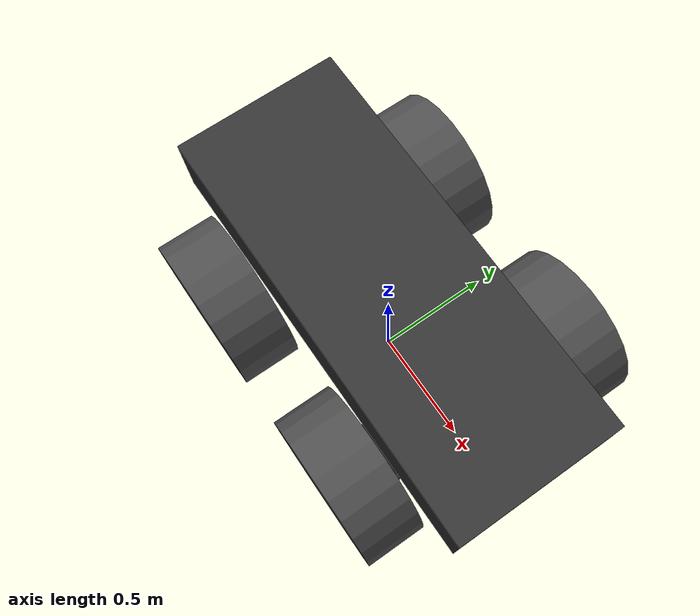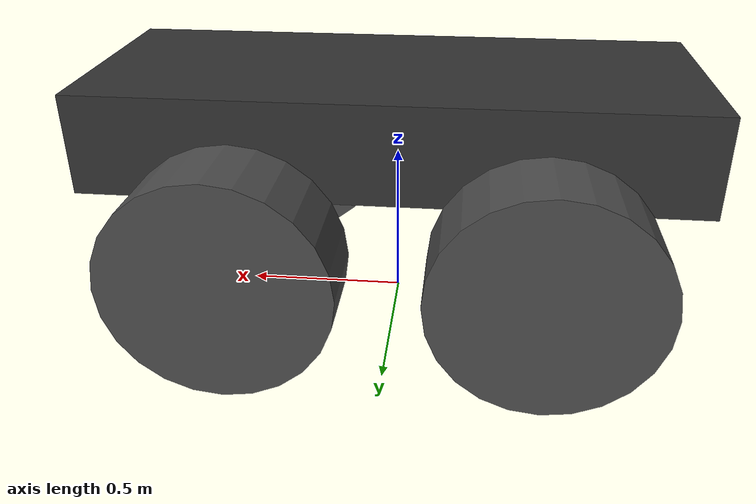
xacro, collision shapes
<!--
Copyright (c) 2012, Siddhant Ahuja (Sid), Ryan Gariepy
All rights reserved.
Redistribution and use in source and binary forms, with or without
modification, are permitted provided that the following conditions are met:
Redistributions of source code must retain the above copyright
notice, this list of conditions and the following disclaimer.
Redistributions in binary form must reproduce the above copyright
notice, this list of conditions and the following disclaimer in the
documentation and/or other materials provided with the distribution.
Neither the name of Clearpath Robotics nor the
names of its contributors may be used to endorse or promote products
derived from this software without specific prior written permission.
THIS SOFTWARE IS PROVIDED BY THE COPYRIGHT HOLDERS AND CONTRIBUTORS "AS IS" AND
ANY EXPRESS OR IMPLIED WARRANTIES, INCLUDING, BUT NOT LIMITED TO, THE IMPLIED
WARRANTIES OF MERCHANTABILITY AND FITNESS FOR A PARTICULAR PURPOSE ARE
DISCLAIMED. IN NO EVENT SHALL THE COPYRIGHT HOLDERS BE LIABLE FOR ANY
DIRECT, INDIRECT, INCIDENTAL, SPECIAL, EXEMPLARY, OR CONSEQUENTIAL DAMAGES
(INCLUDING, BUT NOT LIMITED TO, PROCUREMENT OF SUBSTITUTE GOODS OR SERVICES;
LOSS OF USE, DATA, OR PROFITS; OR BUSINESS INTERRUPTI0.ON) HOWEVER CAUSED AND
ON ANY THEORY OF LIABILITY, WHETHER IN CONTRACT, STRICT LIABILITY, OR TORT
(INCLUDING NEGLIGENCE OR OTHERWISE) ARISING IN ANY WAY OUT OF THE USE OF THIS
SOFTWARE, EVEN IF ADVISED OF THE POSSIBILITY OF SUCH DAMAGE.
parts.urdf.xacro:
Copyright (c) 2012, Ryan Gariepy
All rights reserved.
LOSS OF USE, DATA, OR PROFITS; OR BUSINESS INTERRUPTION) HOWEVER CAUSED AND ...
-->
<?xml version="1.0"?>

<robot xmlns:xacro="http://ros.org/wiki/xacro" name="utias_grizzly_description">
  <xacro:include filename="$(find grizzly_description)/urdf/base.urdf.xacro" />
  <xacro:include filename="$(find utias_grizzly_description)/urdf/accessories/right_lidar.urdf.xacro" />
  <xacro:include filename="$(find utias_grizzly_description)/urdf/accessories/left_lidar.urdf.xacro" />
  <xacro:include filename="$(find utias_grizzly_description)/urdf/accessories/front_xb3.urdf.xacro" />
  <xacro:include filename="$(find utias_grizzly_description)/urdf/accessories/gimbal_base.urdf.xacro" />
  <xacro:include filename="$(find utias_grizzly_description)/urdf/accessories/rear_xb3.urdf.xacro" />
  <xacro:include filename="$(find utias_grizzly_description)/urdf/accessories/front_bumblebee.urdf.xacro" />
  <xacro:include filename="$(find utias_grizzly_description)/urdf/accessories/rear_bumblebee.urdf.xacro" />
  <!-- gps has been renamed to navsat_link, and is defined in the Clearpath Grizzly package -->
  <xacro:include filename="$(find utias_grizzly_description)/urdf/accessories/microstrain.urdf.xacro" />
  <!-- xacro:include filename="$(find utias_grizzly_description)/urdf/accessories/sensor_mast.urdf.xacro" / -->
  <xacro:include filename="$(find utias_grizzly_description)/urdf/accessories/velodyne.urdf.xacro" />
  <xacro:include filename="$(find utias_grizzly_description)/urdf/accessories/honeycomb.urdf.xacro" />
</robot>

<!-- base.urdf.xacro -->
<robot xmlns:xi="http://www.w3.org/2001/XInclude"
       xmlns:gazebo="http://playerstage.sourceforge.net/gazebo/xmlschema/#gz"
       xmlns:model="http://playerstage.sourceforge.net/gazebo/xmlschema/#model"
       xmlns:sensor="http://playerstage.sourceforge.net/gazebo/xmlschema/#sensor"
       xmlns:body="http://playerstage.sourceforge.net/gazebo/xmlschema/#body"
       xmlns:geom="http://playerstage.sourceforge.net/gazebo/xmlschema/#geom"
       xmlns:joint="http://playerstage.sourceforge.net/gazebo/xmlschema/#joint"
       xmlns:controller="http://playerstage.sourceforge.net/gazebo/xmlschema/#controller"
       xmlns:interface="http://playerstage.sourceforge.net/gazebo/xmlschema/#interface"
       xmlns:rendering="http://playerstage.sourceforge.net/gazebo/xmlschema/#rendering"
       xmlns:renderable="http://playerstage.sourceforge.net/gazebo/xmlschema/#renderable"
       xmlns:physics="http://playerstage.sourceforge.net/gazebo/xmlschema/#physics"
       xmlns:xacro="http://ros.org/wiki/xacro"
       name="grizzly">

  <!-- Included URDF/XACRO Files -->
  <xacro:include filename="$(find grizzly_description)/urdf/materials.urdf.xacro" />
  <xacro:include filename="$(find grizzly_description)/urdf/wheel.urdf.xacro" />
  <xacro:include filename="$(find grizzly_description)/urdf/parts.urdf.xacro" />
  <xacro:include filename="$(find grizzly_description)/urdf/add_frame.urdf.xacro" />

  <!-- PROPERTY LIST -->
  <!--All units in m-kg-s-radians unit system -->
  <xacro:property name="M_PI"
            value="3.1415926535897931" />
  <!-- Main Body-base-->
  <!-- Location of com : center of mass -->
  <xacro:property name="base_x_com"
            value="-0.08748000" />
  <xacro:property name="base_y_com"
            value="-0.00085000" />
  <xacro:property name="base_z_com"
            value="0.09947000" />
  <!-- Size of the base-->
  <xacro:property name="base_x_size"
            value="0.708" />
  <xacro:property name="base_y_size"
            value="0.3" />
  <xacro:property name="base_z_size"
            value="1.826" />

  <!-- Mass of the base-->
  <xacro:property name="base_mass" value="487" />

  <!-- Mass of the front axle-->
  <xacro:property name="front_axle_mass" value="113" />

  <!--Inertial values for the front_axle at center of mass, aligned with coordinate system. Units are kg*m^2-->
  <xacro:property name="front_axle_ixx_com_cs"
            value="0.60216370" />
  <xacro:property name="front_axle_ixy_com_cs"
            value="-0.02364198" />
  <xacro:property name="front_axle_ixz_com_cs"
            value="-0.11972132" />
  <xacro:property name="front_axle_iyy_com_cs"
            value="1.73859574" />
  <xacro:property name="front_axle_iyz_com_cs"
            value="-0.00154437" />
  <xacro:property name="front_axle_izz_com_cs"
            value="2.02955229" />
  <!--Inertial values for the base at center of mass, aligned with coordinate system. Units are kg*m^2-->
  <xacro:property name="base_ixx_com_cs"
            value="0.60216370" />
  <xacro:property name="base_ixy_com_cs"
            value="-0.02364198" />
  <xacro:property name="base_ixz_com_cs"
            value="-0.11972132" />
  <xacro:property name="base_iyy_com_cs"
            value="1.73859574" />
  <xacro:property name="base_iyz_com_cs"
            value="-0.00154437" />
  <xacro:property name="base_izz_com_cs"
            value="2.02955229" />

  <!-- BASE-FOOTPRINT -->
  <!-- base_footprint is a fictitious link(frame) that is on the ground right below base_link origin, navigation stack depends on this frame -->
  <link name="base_footprint" />
  <gazebo reference="base_footprint">
    <turnGravityOff>false</turnGravityOff>
  </gazebo>
  <joint name="base_footprint_joint"
         type="fixed">
    <origin xyz="0 0 ${wheel_x_size/2}"
            rpy="0 0 0" />
    <parent link="base_footprint" />
    <child link="base_link" />
  </joint>

  <!-- BASE-LINK -->
  <!--Actual body/chassis of the robot-->
  <link name="base_link">
    <inertial>
      <mass value="${base_mass}" />
      <origin xyz="${base_x_com} ${base_y_com} ${base_z_com}" />
      <inertia ixx="${base_ixx_com_cs}"
               ixy="${base_ixy_com_cs}"
               ixz="${base_ixz_com_cs}"
               iyy="${base_iyy_com_cs}"
               iyz="${base_iyz_com_cs}"
               izz="${base_izz_com_cs}" />
    </inertial>
    <visual>
      <origin xyz="0 0 ${base_z_origin_offset}"
              rpy="${M_PI/2} 0 ${M_PI/2}" />
      <geometry>
        <mesh filename="package://grizzly_description/meshes/base_link.stl" />
      </geometry>
      <material name="DarkGrey" />
    </visual>
    <collision>
      <origin xyz="0 0 0.3"
              rpy="${M_PI/2} 0 ${M_PI/2}" />
      <geometry>
        <box size="${base_x_size} ${base_y_size} ${base_z_size}" />
        <!--making it slightly bigger in x and z direction-->
      </geometry>
    </collision>
  </link>
  <gazebo reference="base_link">
    <material>Gazebo/DarkGrey</material>
    <turnGravityOff>false</turnGravityOff>
    <selfCollide>false</selfCollide>
  </gazebo>

  <!-- Add a sensor anchor link that points to the center of the robot top plate -->
  <xacro:grizzly_tf parent="base_link" name="sensor_anchor_link"
    translateX="0" translateY="0" translateZ="0.45"
    rotateX="0.0" rotateY="0.0" rotateZ="0.0"/>

  <!-- Add a sensor anchor link for the imu -->
  <xacro:grizzly_tf parent="sensor_anchor_link" name="imu_link"
    translateX="-0.788" translateY="0" translateZ="-0.118"
    rotateX="3.1415" rotateY="1.5701" rotateZ="0" />

  <!-- DECORATIONS -->
  <!-- Bumpers -->
  <xacro:grizzly_part parent="base_footprint"
                name="bumper"
                mesh="bumper"
                colour="Yellow"
                translateX="0.0"
                translateY="0.0"
                translateZ="0.5"
                rotateX="${M_PI/2}"
                rotateY="0.0"
                rotateZ="${M_PI/2}" />
  <gazebo reference="base_footprint_bumper_part">
    <material>Gazebo/Yellow</material>
  </gazebo>

  <!-- Back wheels -->
  <xacro:grizzly_wheel fb="back"
                 lr="left"
                 parent="base_link"
                 translateX="-1.75"
                 translateY="1.75"
                 translateZ="0"
                 flipY="0" />
  <xacro:grizzly_wheel fb="back"
                 lr="right"
                 parent="base_link"
                 translateX="-1.75"
                 translateY="-1.75"
                 translateZ="0"
                 flipY="1" />

  <!-- Front axle link -->
  <joint name="front_axle_joint"
         type="revolute">
    <origin xyz="0.4375 0 0"
            rpy="0 0 0" />
    <parent link="base_link" />
    <child link="front_axle_link" />
    <axis xyz="1 0 0"
          rpy="0 0 0" />
    <limit effort="10"
           lower="-0.2"
           upper="0.2"
           velocity="0.5" />
  </joint>

  <link name="front_axle_link">
    <inertial>
      <mass value="${front_axle_mass}" />
      <origin xyz="0 0 0" />
      <inertia ixx="${front_axle_ixx_com_cs}"
               ixy="${front_axle_ixy_com_cs}"
               ixz="${front_axle_ixz_com_cs}"
               iyy="${front_axle_iyy_com_cs}"
               iyz="${front_axle_iyz_com_cs}"
               izz="${front_axle_izz_com_cs}" />
    </inertial>
    <visual>
      <origin xyz="-0.2 0 0.45"
              rpy="0 ${M_PI} ${M_PI/2}" />
      <geometry>
        <mesh filename="package://grizzly_description/meshes/front_axle.stl" />
      </geometry>
      <material name="DarkGrey" />
    </visual>
    <collision>
      <origin xyz="0 0 0"
              rpy="${M_PI/2} 0 0" />
      <geometry>
        <cylinder length="1.0"
                  radius="0.13" />
      </geometry>
    </collision>
  </link>

  <gazebo reference="front_axle_link">
    <material>Gazebo/DarkGrey</material>
    <turnGravityOff>false</turnGravityOff>
  </gazebo>

  <!-- Front wheels -->
  <xacro:grizzly_wheel fb="front"
                 lr="left"
                 parent="front_axle_link"
                 translateX="0"
                 translateY="1.75"
                 translateZ="0"
                 flipY="0" />
  <xacro:grizzly_wheel fb="front"
                 lr="right"
                 parent="front_axle_link"
                 translateX="0"
                 translateY="-1.75"
                 translateZ="0"
                 flipY="1" />

  <!-- Grizzly Plugin -->
  <gazebo>
    <plugin name="grizzly_diff_controller"
            filename="libgrizzly_gazebo_plugins.so">
      <alwaysOn>true</alwaysOn>
      <updateRate>100.0</updateRate>
      <backLeftJoint>joint_back_left_wheel</backLeftJoint>
      <backRightJoint>joint_back_right_wheel</backRightJoint>
      <frontLeftJoint>joint_front_left_wheel</frontLeftJoint>
      <frontRightJoint>joint_front_right_wheel</frontRightJoint>
      <frontAxleJoint>front_axle_joint</frontAxleJoint>
      <wheelSeparation>${base_y_size}</wheelSeparation>
      <wheelDiameter>${wheel_x_size}</wheelDiameter>
      <torque>35</torque>
    </plugin>
  </gazebo>
</robot>

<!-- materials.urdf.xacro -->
<robot>
  <material name="Black">
    <color rgba="0.0 0.0 0.0 1.0" />
  </material>
  <material name="Blue">
    <color rgba="0.0 0.0 0.8 1.0" />
  </material>
  <material name="Green">
    <color rgba="0.0 0.8 0.0 1.0" />
  </material>
  <material name="Grey">
    <color rgba="0.3 0.3 0.3 1.0" />
  </material>
  <material name="DarkGrey">
    <color rgba="0.2 0.2 0.2 1.0" />
  </material>
  <material name="Red">
    <color rgba="0.8 0.0 0.0 1.0" />
  </material>
  <material name="White">
    <color rgba="1.0 1.0 1.0 1.0" />
  </material>
  <material name="Yellow">
    <color rgba="0.8 0.8 0.0 1.0" />
  </material>
</robot>

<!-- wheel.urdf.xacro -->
<robot xmlns:sensor="http://playerstage.sourceforge.net/gazebo/xmlschema/#sensor"
       xmlns:controller="http://playerstage.sourceforge.net/gazebo/xmlschema/#controller"
       xmlns:interface="http://playerstage.sourceforge.net/gazebo/xmlschema/#interface"
       xmlns:xacro="http://ros.org/wiki/xacro"
       name="grizzly_wheel">
  <xacro:property name="M_PI"
            value="3.14159" />
  <!-- Wheel -->
  <xacro:property name="wheel_x_com"
            value="0.00000000" />
  <!-- com : center of mass -->
  <xacro:property name="wheel_y_com"
            value="0.00000000" />
  <!-- com : center of mass -->
  <xacro:property name="wheel_z_com"
            value="0.00019000" />
  <!-- com : center of mass -->
  <xacro:property name="wheel_x_size"
            value="0.66" />
  <xacro:property name="wheel_y_size"
            value="0.66" />
  <xacro:property name="wheel_z_size"
            value="0.252" />

  <xacro:property name="wheel_mass" value="15" />

  <xacro:property name="wheel_ixx_com_cs"
            value="0.02466885" />
  <!-- at center of mass aligned with coordinate system, kg*m^2-->
  <xacro:property name="wheel_ixy_com_cs"
            value="0.00000000" />
  <!-- at center of mass aligned with coordinate system, kg*m^2-->
  <xacro:property name="wheel_ixz_com_cs"
            value="0.00000000" />
  <!-- at center of mass aligned with coordinate system, kg*m^2-->
  <xacro:property name="wheel_iyy_com_cs"
            value="0.02466885" />
  <!-- at center of mass aligned with coordinate system, kg*m^2-->
  <xacro:property name="wheel_iyz_com_cs"
            value="0.00000000" />
  <!-- at center of mass aligned with coordinate system, kg*m^2-->
  <xacro:property name="wheel_izz_com_cs"
            value="0.04410576" />
  <!-- at center of mass aligned with coordinate system, kg*m^2-->
  <xacro:property name="base_x_origin_to_wheel_origin"
            value="0.25600006" />
  <xacro:property name="base_y_origin_to_wheel_origin"
            value="0.285475" />
  <xacro:property name="base_z_origin_to_wheel_origin"
            value="0.0" />
  <xacro:property name="base_z_origin_offset"
            value="0.2" />
  <!-- origin is offset in + z direction by 3.175mm, so need to bring it back down for visual and collision-->
  <xacro:macro name="grizzly_wheel"
               params="fb lr parent translateX translateY translateZ flipY">
    <!--fb : front, back ; lr: left, right -->
    <link name="${fb}_${lr}_wheel">
      <inertial>
        <mass value="${wheel_mass}" />
        <origin xyz="${wheel_x_com} ${wheel_y_com} ${wheel_z_com}" />
        <inertia ixx="${wheel_ixx_com_cs}"
                 ixy="${wheel_ixy_com_cs}"
                 ixz="${wheel_ixz_com_cs}"
                 iyy="${wheel_iyy_com_cs}"
                 iyz="${wheel_iyz_com_cs}"
                 izz="${wheel_izz_com_cs}" />
      </inertial>
      <visual>
        <origin xyz="0 0 0"
                rpy="${M_PI/2} ${flipY*M_PI} ${M_PI/2}" />
        <geometry>
          <mesh filename="package://grizzly_description/meshes/wheel.stl" />
        </geometry>
        <material name="Grey" />
      </visual>
      <collision>
        <origin xyz="0 0 0"
                rpy="${M_PI/2} ${flipY*M_PI} 0" />
        <geometry>
          <cylinder length="${wheel_z_size}"
                    radius="${wheel_x_size/2}" />
        </geometry>
      </collision>
    </link>
    <gazebo reference="${fb}_${lr}_wheel">
      <mu1 value="100.0" />
      <mu2 value="0.1" />
      <kp value="10000000.0" />
      <kd value="1.0" />
      <fdir1 value="1 0 0" />
      <material>Gazebo/Grey</material>
      <turnGravityOff>false</turnGravityOff>
      <selfCollide>true</selfCollide>
    </gazebo>
    <joint name="joint_${fb}_${lr}_wheel"
           type="continuous">
      <parent link="${parent}" />
      <child link="${fb}_${lr}_wheel" />
      <origin xyz="${translateX * base_x_origin_to_wheel_origin} ${translateY * base_y_origin_to_wheel_origin} ${translateZ}"
              rpy="0 0 0" />
      <axis xyz="0 1 0"
            rpy="0 0 0" />
      <limit effort="100"
             velocity="100" />
      <joint_properties damping="0.0"
                        friction="0.0" />
    </joint>
    <!-- Transmission is important to link the joints and the controller -->
    <transmission name="joint_${fb}_${lr}_wheel_trans"
                  type="SimpleTransmission">
      <actuator name="joint_${fb}_${lr}_wheel_motor" />
      <joint name="joint_${fb}_${lr}_wheel" />
      <mechanicalReduction>1</mechanicalReduction>
      <motorTorqueConstant>1</motorTorqueConstant>
    </transmission>
  </xacro:macro>
</robot>

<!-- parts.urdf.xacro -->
<robot xmlns:sensor="http://playerstage.sourceforge.net/gazebo/xmlschema/#sensor"
       xmlns:controller="http://playerstage.sourceforge.net/gazebo/xmlschema/#controller"
       xmlns:interface="http://playerstage.sourceforge.net/gazebo/xmlschema/#interface"
       xmlns:xacro="http://ros.org/wiki/xacro"
       name="grizzly_part">
  <xacro:property name="x_com"
            value="0.00000000" />
  <!-- com : center of mass -->
  <xacro:property name="y_com"
            value="0.00000000" />
  <!-- com : center of mass -->
  <xacro:property name="z_com"
            value="0.00000000" />
  <!-- com : center of mass -->
  <xacro:property name="x_size"
            value="1.0" />
  <xacro:property name="y_size"
            value="1.0" />
  <xacro:property name="z_size"
            value="1.0" />
  <xacro:property name="mass"
            value="0.1" />
  <!-- in kg-->
  <xacro:property name="ixx_com_cs"
            value="0.01" />
  <!-- at center of mass aligned with coordinate system, kg*m^2-->
  <xacro:property name="ixy_com_cs"
            value="0.0" />
  <!-- at center of mass aligned with coordinate system, kg*m^2-->
  <xacro:property name="ixz_com_cs"
            value="0.0" />
  <!-- at center of mass aligned with coordinate system, kg*m^2-->
  <xacro:property name="iyy_com_cs"
            value="0.01" />
  <!-- at center of mass aligned with coordinate system, kg*m^2-->
  <xacro:property name="iyz_com_cs"
            value="0.00" />
  <!-- at center of mass aligned with coordinate system, kg*m^2-->
  <xacro:property name="izz_com_cs"
            value="0.01" />
  <!-- at center of mass aligned with coordinate system, kg*m^2-->
  <xacro:macro name="grizzly_part"
               params="parent name mesh colour translateX translateY translateZ rotateX rotateY rotateZ">
    <joint name="${parent}_${name}_joint"
           type="fixed">
      <origin xyz="${translateX} ${translateY} ${translateZ}"
              rpy="${rotateX} ${rotateY} ${rotateZ}" />
      <parent link="${parent}" />
      <child link="${parent}_${name}_part" />
    </joint>
    <link name="${parent}_${name}_part">
      <inertial>
        <mass value="${mass}" />
        <origin xyz="${x_com} ${y_com} ${z_com}" />
        <inertia ixx="${ixx_com_cs}"
                 ixy="${ixy_com_cs}"
                 ixz="${ixz_com_cs}"
                 iyy="${iyy_com_cs}"
                 iyz="${iyz_com_cs}"
                 izz="${izz_com_cs}" />
      </inertial>
      <visual>
        <origin xyz="0 0 0"
                rpy="0 0 0" />
        <geometry>
          <mesh filename="package://grizzly_description/meshes/${mesh}.stl" />
        </geometry>
        <material name="${colour}" />
      </visual>
      <collision>
        <origin xyz="0 0 0"
                rpy="0 0 0" />
        <geometry>
          <box size="0.001 0.001 0.001" />
          <!--the collision boundary for parts are taken into account by collision boundary of the base_link-->
        </geometry>
      </collision>
    </link>
  </xacro:macro>
</robot>

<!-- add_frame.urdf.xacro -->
<robot xmlns:sensor="http://playerstage.sourceforge.net/gazebo/xmlschema/#sensor"
       xmlns:controller="http://playerstage.sourceforge.net/gazebo/xmlschema/#controller"
       xmlns:interface="http://playerstage.sourceforge.net/gazebo/xmlschema/#interface"
       xmlns:xacro="http://ros.org/wiki/xacro"
       name="grizzly_tf">
  <xacro:property name="x_com"
            value="0.00000000" />
  <!-- com : center of mass -->
  <xacro:property name="y_com"
            value="0.00000000" />
  <!-- com : center of mass -->
  <xacro:property name="z_com"
            value="0.00000000" />
  <!-- com : center of mass -->
  <xacro:property name="mass"
            value="0.1" />
  <!-- in kg-->
  <xacro:property name="ixx_com_cs"
            value="0.01" />
  <!-- at center of mass aligned with coordinate system, kg*m^2-->
  <xacro:property name="ixy_com_cs"
            value="0.0" />
  <!-- at center of mass aligned with coordinate system, kg*m^2-->
  <xacro:property name="ixz_com_cs"
            value="0.0" />
  <!-- at center of mass aligned with coordinate system, kg*m^2-->
  <xacro:property name="iyy_com_cs"
            value="0.01" />
  <!-- at center of mass aligned with coordinate system, kg*m^2-->
  <xacro:property name="iyz_com_cs"
            value="0.00" />
  <!-- at center of mass aligned with coordinate system, kg*m^2-->
  <xacro:property name="izz_com_cs"
            value="0.01" />
  <!-- at center of mass aligned with coordinate system, kg*m^2-->
  <xacro:macro name="grizzly_tf"
               params="parent name translateX translateY translateZ rotateX rotateY rotateZ">
    <joint name="${parent}_${name}_joint"
           type="fixed">
      <origin xyz="${translateX} ${translateY} ${translateZ}"
              rpy="${rotateX} ${rotateY} ${rotateZ}" />
      <parent link="${parent}" />
      <child link="${name}" />
    </joint>
    <link name="${name}">
      <inertial>
        <mass value="${mass}" />
        <origin xyz="${x_com} ${y_com} ${z_com}" />
        <inertia ixx="${ixx_com_cs}"
                 ixy="${ixy_com_cs}"
                 ixz="${ixz_com_cs}"
                 iyy="${iyy_com_cs}"
                 iyz="${iyz_com_cs}"
                 izz="${izz_com_cs}" />
      </inertial>
    </link>
  </xacro:macro>
</robot>
